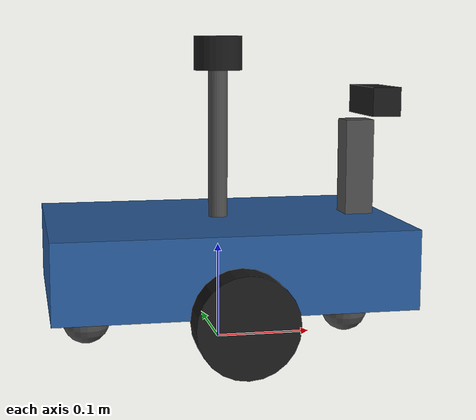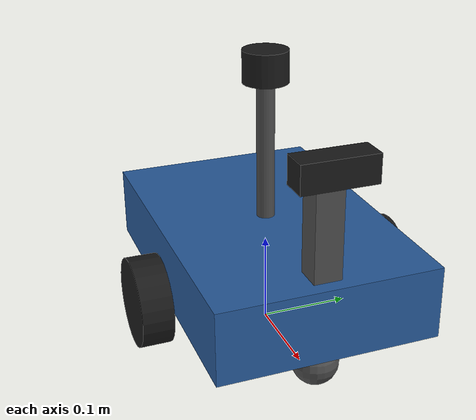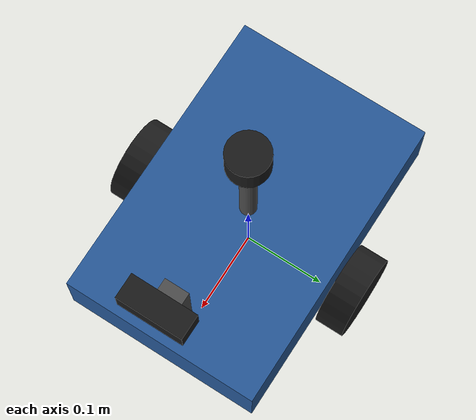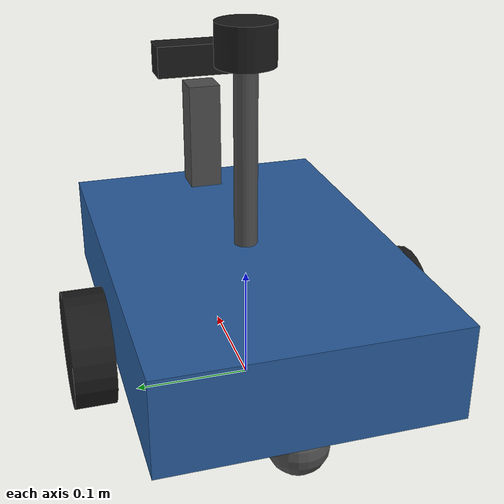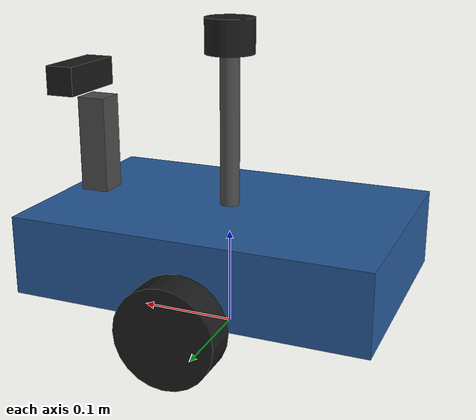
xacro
<?xml version="1.0"?>
<robot name="camera_bot" xmlns:xacro="http://www.ros.org/wiki/xacro">

  <!-- The wheels' collision shape: "sphere" by default (see the wheel macro), or "cylinder", the
       shape they are drawn as. -->
  <xacro:arg name="wheel_collision" default="sphere"/>

  <!-- Dimensions in metres, masses in kilograms -->
  <xacro:property name="body_length" value="0.36"/>
  <xacro:property name="body_width" value="0.24"/>
  <xacro:property name="body_height" value="0.08"/>
  <xacro:property name="body_z" value="0.09"/>  <!-- body centre above the floor -->
  <xacro:property name="body_mass" value="4.0"/>
  <xacro:property name="wheel_radius" value="0.05"/>
  <xacro:property name="wheel_width" value="0.035"/>
  <xacro:property name="wheel_separation" value="0.28"/>
  <xacro:property name="wheel_mass" value="0.3"/>
  <xacro:property name="caster_radius" value="0.025"/>
  <xacro:property name="caster_x" value="0.14"/>
  <xacro:property name="camera_x" value="0.17"/>
  <xacro:property name="camera_z" value="0.25"/>  <!-- lens above the floor -->
  <xacro:property name="camera_mass" value="0.05"/>
  <!-- The scan plane sits above the camera, clear of everything else on the robot. -->
  <xacro:property name="lidar_z" value="0.30"/>
  <xacro:property name="lidar_radius" value="0.025"/>
  <xacro:property name="lidar_height" value="0.035"/>
  <xacro:property name="lidar_mass" value="0.1"/>
  <xacro:property name="mast_radius" value="0.01"/>

  <!-- What the base can do, in m/s, rad/s and their rates of change -->
  <xacro:property name="max_speed" value="0.6"/>
  <xacro:property name="max_turn_rate" value="1.5"/>
  <xacro:property name="max_acceleration" value="1.0"/>
  <xacro:property name="max_turn_acceleration" value="2.0"/>

  <xacro:property name="lidar_rate" value="10"/>
  <xacro:property name="lidar_samples" value="500"/>
  <xacro:property name="lidar_range_min" value="0.05"/>
  <xacro:property name="lidar_range_max" value="12.0"/>
  <!-- The datasheets give +-3 cm without saying what it bounds. It is read here as three standard
       deviations. -->
  <xacro:property name="lidar_noise_stddev" value="0.01"/>

  <xacro:property name="imu_rate" value="100"/>
  <xacro:property name="gyro_noise_stddev" value="0.0009"/>  <!-- rad/s -->
  <xacro:property name="gyro_bias_stddev" value="0.001"/>  <!-- rad/s -->
  <xacro:property name="accel_noise_stddev" value="0.02"/>

  <material name="body"><color rgba="0.15 0.35 0.6 1"/></material>
  <material name="dark"><color rgba="0.1 0.1 0.1 1"/></material>
  <material name="grey"><color rgba="0.3 0.3 0.3 1"/></material>

  <!-- Solid box inertia about its centre -->
  <xacro:macro name="box_inertia" params="mass x y z">
    <inertial>
      <mass value="${mass}"/>
      <inertia ixx="${mass / 12 * (y**2 + z**2)}" ixy="0" ixz="0"
               iyy="${mass / 12 * (x**2 + z**2)}" iyz="0"
               izz="${mass / 12 * (x**2 + y**2)}"/>
    </inertial>
  </xacro:macro>

  <!-- A sphere under the body that slides on the floor: visual and collision of base_link -->
  <xacro:macro name="caster" params="x">
    <visual>
      <origin xyz="${x} 0 ${caster_radius - body_z}" rpy="0 0 0"/>
      <geometry><sphere radius="${caster_radius}"/></geometry>
      <material name="grey"/>
    </visual>
    <collision>
      <origin xyz="${x} 0 ${caster_radius - body_z}" rpy="0 0 0"/>
      <geometry><sphere radius="${caster_radius}"/></geometry>
    </collision>
  </xacro:macro>

  <!-- ===================== Base ===================== -->

  <link name="base_footprint"/>

  <joint name="base_joint" type="fixed">
    <parent link="base_footprint"/>
    <child link="base_link"/>
    <origin xyz="0 0 ${body_z}" rpy="0 0 0"/>
  </joint>

  <link name="base_link">
    <xacro:box_inertia mass="${body_mass}" x="${body_length}" y="${body_width}" z="${body_height}"/>
    <visual>
      <geometry><box size="${body_length} ${body_width} ${body_height}"/></geometry>
      <material name="body"/>
    </visual>
    <collision>
      <geometry><box size="${body_length} ${body_width} ${body_height}"/></geometry>
    </collision>
    <visual>
      <origin xyz="0.15 0 0.09" rpy="0 0 0"/>
      <geometry><box size="0.03 0.03 0.10"/></geometry>
      <material name="grey"/>
    </visual>
    <!-- Lidar mast, from the top of the body to the bottom of the lidar -->
    <visual>
      <origin xyz="0 0 ${(body_height / 2 + lidar_z - body_z - lidar_height / 2) / 2}" rpy="0 0 0"/>
      <geometry>
        <cylinder radius="${mast_radius}"
                  length="${lidar_z - body_z - lidar_height / 2 - body_height / 2}"/>
      </geometry>
      <material name="grey"/>
    </visual>
    <xacro:caster x="${caster_x}"/>
    <xacro:caster x="${-caster_x}"/>
  </link>

  <!-- Only the casters touch the floor from the base, and they must slide. -->
  <gazebo reference="base_link">
    <mu1>0.0</mu1>
    <mu2>0.0</mu2>
  </gazebo>

  <!-- ===================== Wheels ===================== -->

  <xacro:macro name="wheel" params="side y">
    <link name="${side}_wheel">
      <inertial>
        <mass value="${wheel_mass}"/>
        <inertia ixx="${wheel_mass / 12 * (3 * wheel_radius**2 + wheel_width**2)}" ixy="0" ixz="0"
                 iyy="${wheel_mass / 12 * (3 * wheel_radius**2 + wheel_width**2)}" iyz="0"
                 izz="${wheel_mass / 2 * wheel_radius**2}"/>
      </inertial>
      <visual>
        <geometry><cylinder radius="${wheel_radius}" length="${wheel_width}"/></geometry>
        <material name="dark"/>
      </visual>
      <collision>
        <xacro:if value="${'$(arg wheel_collision)' == 'sphere'}">
          <geometry><sphere radius="${wheel_radius}"/></geometry>
        </xacro:if>
        <xacro:if value="${'$(arg wheel_collision)' == 'cylinder'}">
          <geometry><cylinder radius="${wheel_radius}" length="${wheel_width}"/></geometry>
        </xacro:if>
      </collision>
    </link>
    <!-- The cylinder's axis is its z: rolled to point along y, the joint turns about it. -->
    <joint name="${side}_wheel_joint" type="continuous">
      <parent link="base_link"/>
      <child link="${side}_wheel"/>
      <origin xyz="0 ${y} ${wheel_radius - body_z}" rpy="${-pi / 2} 0 0"/>
      <axis xyz="0 0 1"/>
    </joint>
  </xacro:macro>

  <xacro:wheel side="left" y="${wheel_separation / 2}"/>
  <xacro:wheel side="right" y="${-wheel_separation / 2}"/>

  <!-- ===================== Camera ===================== -->

  <joint name="camera_joint" type="fixed">
    <parent link="base_link"/>
    <child link="camera_link"/>
    <origin xyz="${camera_x} 0 ${camera_z - body_z}" rpy="0 0 0"/>
  </joint>

  <link name="camera_link">
    <xacro:box_inertia mass="${camera_mass}" x="0.03" y="0.08" z="0.03"/>
    <visual>
      <geometry><box size="0.03 0.08 0.03"/></geometry>
      <material name="dark"/>
    </visual>
  </link>

  <!-- Optical frame: z along the line of sight, x right and y down in the image. -->
  <joint name="camera_optical_joint" type="fixed">
    <parent link="camera_link"/>
    <child link="camera_link_optical"/>
    <origin xyz="0 0 0" rpy="${-pi / 2} 0 ${-pi / 2}"/>
  </joint>

  <link name="camera_link_optical"/>

  <gazebo reference="camera_link">
    <sensor name="front_camera" type="camera">
      <always_on>true</always_on>
      <update_rate>15</update_rate>
      <visualize>true</visualize>
      <topic>/camera/image</topic>
      <gz_frame_id>camera_link_optical</gz_frame_id>
      <camera>
        <horizontal_fov>1.0472</horizontal_fov>
        <image>
          <width>640</width>
          <height>480</height>
          <format>R8G8B8</format>
        </image>
        <clip>
          <near>0.05</near>
          <far>20</far>
        </clip>
        <camera_info_topic>/camera/camera_info</camera_info_topic>
      </camera>
    </sensor>
  </gazebo>

  <!-- ===================== Lidar ===================== -->

  <joint name="lidar_joint" type="fixed">
    <parent link="base_link"/>
    <child link="lidar_link"/>
    <origin xyz="0 0 ${lidar_z - body_z}" rpy="0 0 0"/>
  </joint>

  <!-- The housing is narrower than the minimum range, so the lidar never sees itself. -->
  <link name="lidar_link">
    <xacro:box_inertia mass="${lidar_mass}" x="${2 * lidar_radius}" y="${2 * lidar_radius}"
                       z="${lidar_height}"/>
    <visual>
      <geometry><cylinder radius="${lidar_radius}" length="${lidar_height}"/></geometry>
      <material name="dark"/>
    </visual>
  </link>

  <gazebo reference="lidar_link">
    <sensor name="lidar" type="gpu_lidar">
      <always_on>true</always_on>
      <update_rate>${lidar_rate}</update_rate>
      <visualize>true</visualize>
      <topic>/scan</topic>
      <gz_frame_id>lidar_link</gz_frame_id>
      <lidar>
        <scan>
          <horizontal>
            <samples>${lidar_samples}</samples>
            <resolution>1</resolution>
            <!-- A full turn that does not measure the same direction twice: the last ray stops
                 one step short of the first. -->
            <min_angle>${-pi}</min_angle>
            <max_angle>${pi - 2 * pi / lidar_samples}</max_angle>
          </horizontal>
          <vertical>
            <samples>1</samples>
            <resolution>1</resolution>
            <min_angle>0</min_angle>
            <max_angle>0</max_angle>
          </vertical>
        </scan>
        <range>
          <min>${lidar_range_min}</min>
          <max>${lidar_range_max}</max>
          <resolution>0.01</resolution>
        </range>
        <noise>
          <type>gaussian</type>
          <mean>0</mean>
          <stddev>${lidar_noise_stddev}</stddev>
        </noise>
      </lidar>
    </sensor>
  </gazebo>

  <!-- ===================== IMU ===================== -->

  <joint name="imu_joint" type="fixed">
    <parent link="base_link"/>
    <child link="imu_link"/>
    <origin xyz="0 0 0" rpy="0 0 0"/>
  </joint>

  <link name="imu_link">
    <xacro:box_inertia mass="0.01" x="0.02" y="0.02" z="0.005"/>
  </link>

  <xacro:macro name="imu_noise" params="stddev bias_stddev">
    <noise type="gaussian">
      <mean>0</mean>
      <stddev>${stddev}</stddev>
      <bias_mean>0</bias_mean>
      <bias_stddev>${bias_stddev}</bias_stddev>
    </noise>
  </xacro:macro>

  <gazebo reference="imu_link">
    <sensor name="imu" type="imu">
      <always_on>true</always_on>
      <update_rate>${imu_rate}</update_rate>
      <topic>/imu</topic>
      <gz_frame_id>imu_link</gz_frame_id>
      <imu>
        <!-- A real gyro gives no orientation. Gazebo's would be the true heading. -->
        <enable_orientation>false</enable_orientation>
        <angular_velocity>
          <x><xacro:imu_noise stddev="${gyro_noise_stddev}" bias_stddev="${gyro_bias_stddev}"/></x>
          <y><xacro:imu_noise stddev="${gyro_noise_stddev}" bias_stddev="${gyro_bias_stddev}"/></y>
          <z><xacro:imu_noise stddev="${gyro_noise_stddev}" bias_stddev="${gyro_bias_stddev}"/></z>
        </angular_velocity>
        <linear_acceleration>
          <x><xacro:imu_noise stddev="${accel_noise_stddev}" bias_stddev="0"/></x>
          <y><xacro:imu_noise stddev="${accel_noise_stddev}" bias_stddev="0"/></y>
          <z><xacro:imu_noise stddev="${accel_noise_stddev}" bias_stddev="0"/></z>
        </linear_acceleration>
      </imu>
    </sensor>
  </gazebo>

  <!-- ===================== Gazebo systems ===================== -->

  <gazebo>
    <plugin filename="gz-sim-diff-drive-system" name="gz::sim::systems::DiffDrive">
      <left_joint>left_wheel_joint</left_joint>
      <right_joint>right_wheel_joint</right_joint>
      <wheel_separation>${wheel_separation}</wheel_separation>
      <wheel_radius>${wheel_radius}</wheel_radius>
      <topic>/cmd_vel</topic>
      <!-- Gazebo's own wheel odometry, nearly exact, goes to /sim topics. noisy_odometry adds
           the drift a real robot has, and the local filter publishes odom -> base_footprint. -->
      <odom_topic>/sim/wheel_odometry</odom_topic>
      <tf_topic>/sim/wheel_odometry/tf</tf_topic>
      <frame_id>odom</frame_id>
      <child_frame_id>base_footprint</child_frame_id>
      <odom_publish_frequency>30</odom_publish_frequency>
      <max_linear_velocity>${max_speed}</max_linear_velocity>
      <min_linear_velocity>${-max_speed}</min_linear_velocity>
      <max_angular_velocity>${max_turn_rate}</max_angular_velocity>
      <min_angular_velocity>${-max_turn_rate}</min_angular_velocity>
      <max_linear_acceleration>${max_acceleration}</max_linear_acceleration>
      <min_linear_acceleration>${-max_acceleration}</min_linear_acceleration>
      <max_angular_acceleration>${max_turn_acceleration}</max_angular_acceleration>
      <min_angular_acceleration>${-max_turn_acceleration}</min_angular_acceleration>
    </plugin>
    <plugin filename="gz-sim-joint-state-publisher-system"
            name="gz::sim::systems::JointStatePublisher">
      <topic>/joint_states</topic>
    </plugin>
    <!-- Ground truth for the experiments: the robot's true pose in the world frame, which is also
         the map. Its transform goes to its own topic, /ground_truth/tf, which no node reads. -->
    <plugin filename="gz-sim-odometry-publisher-system"
            name="gz::sim::systems::OdometryPublisher">
      <odom_frame>map</odom_frame>
      <robot_base_frame>base_footprint</robot_base_frame>
      <odom_topic>/ground_truth</odom_topic>
      <tf_topic>/ground_truth/tf</tf_topic>
      <odom_publish_frequency>30</odom_publish_frequency>
      <dimensions>2</dimensions>
    </plugin>
  </gazebo>

</robot>
